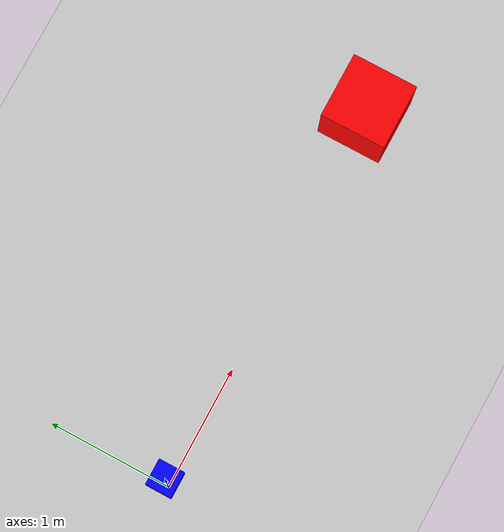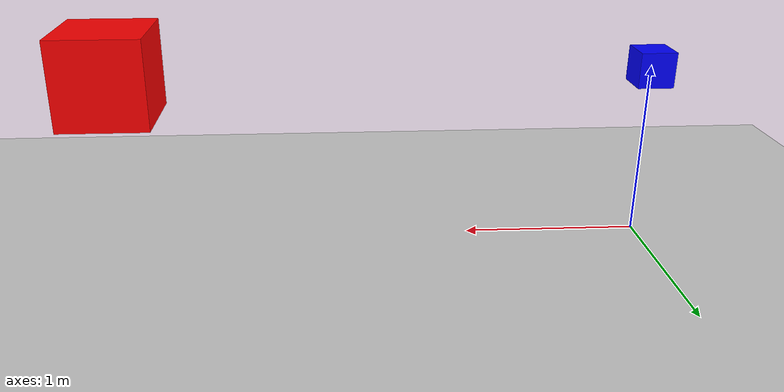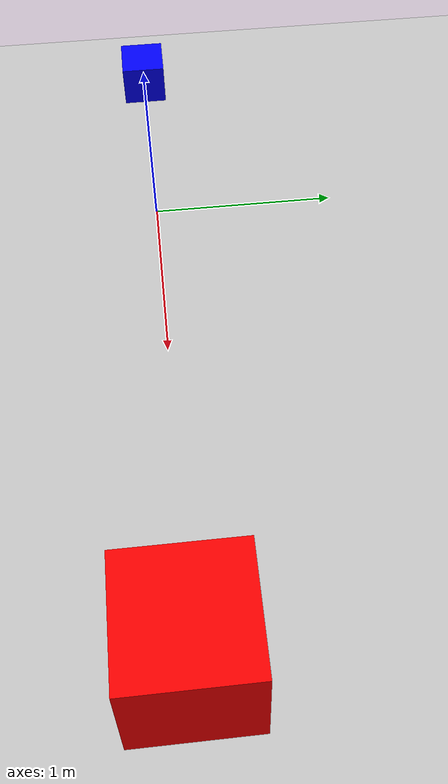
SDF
<?xml version="1.0" ?>
<sdf version="1.8">
  <world name="camera_test_world">

    <plugin filename="gz-sim-physics-system" name="gz::sim::systems::Physics"/>
    <plugin filename="gz-sim-scene-broadcaster-system" name="gz::sim::systems::SceneBroadcaster"/>
    <plugin filename="gz-sim-user-commands-system" name="gz::sim::systems::UserCommands"/>
    <plugin filename="gz-sim-sensors-system" name="gz::sim::systems::Sensors">
      <render_engine>ogre2</render_engine>
    </plugin>

    <light type="directional" name="sun">
      <cast_shadows>true</cast_shadows>
      <pose>0 0 10 0 0 0</pose>
      <diffuse>0.8 0.8 0.8 1</diffuse>
      <specular>0.2 0.2 0.2 1</specular>
      <direction>-0.5 0.1 -0.9</direction>
    </light>

    <model name="ground_plane">
      <static>true</static>
      <link name="link">
        <collision name="collision"><geometry><plane><normal>0 0 1</normal></plane></geometry></collision>
        <visual name="visual"><geometry><plane><normal>0 0 1</normal><size>100 100</size></plane></geometry><material><ambient>0.8 0.8 0.8 1</ambient><diffuse>0.8 0.8 0.8 1</diffuse></material></visual>
      </link>
    </model>

    <model name="standalone_camera">
      <pose>0 0 1.0 0 0 0</pose> <static>true</static>
      <link name="camera_link">
        <visual name="visual">
          <geometry><box><size>0.2 0.2 0.2</size></box></geometry>
          <material><ambient>0 0 1 1</ambient><diffuse>0 0 1 1</diffuse></material>
        </visual>

        <sensor name="test_camera" type="camera">
          <pose>0.1 0 0 0 0 0</pose> <camera>
            <horizontal_fov>1.047</horizontal_fov>
            <image>
              <width>640</width>
              <height>480</height>
            </image>
            <clip><near>0.1</near><far>100</far></clip>
          </camera>
          <always_on>1</always_on>
          <update_rate>30</update_rate>
          <visualize>true</visualize>
          <topic>camera</topic>
        </sensor>
      </link>
    </model>

    <model name="target_box">
      <pose>3.0 0 1.0 0 0 0</pose>
      <static>true</static>
      <link name="link">
        <visual name="visual">
          <geometry><box><size>0.5 0.5 0.5</size></box></geometry>
          <material><ambient>1 0 0 1</ambient><diffuse>1 0 0 1</diffuse></material>
        </visual>
      </link>
    </model>

  </world>
</sdf>
